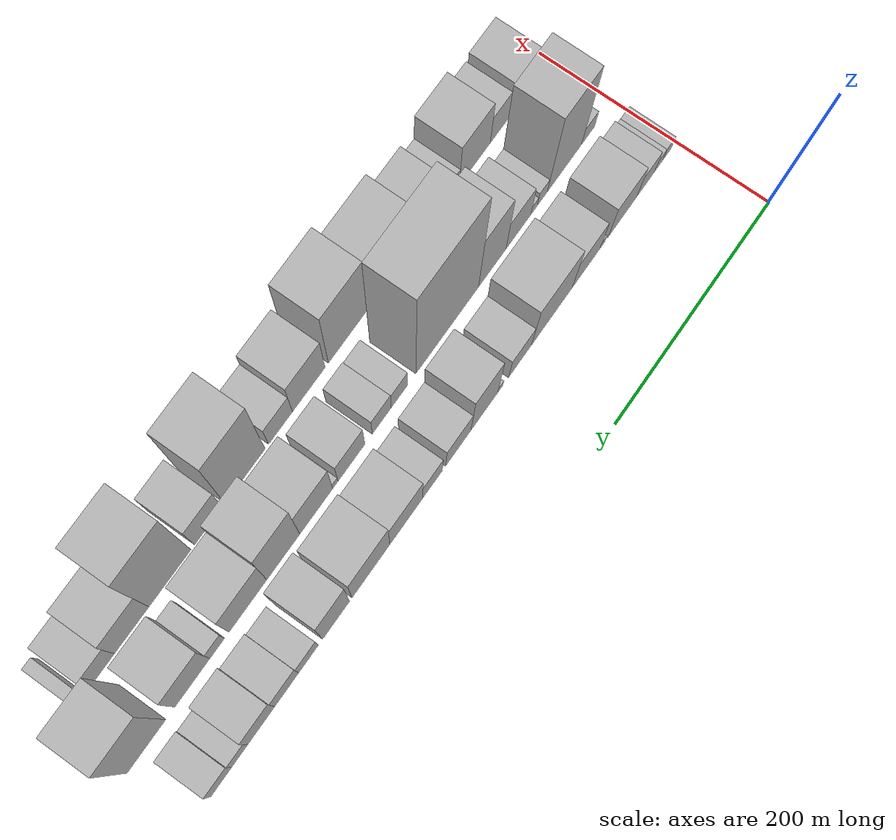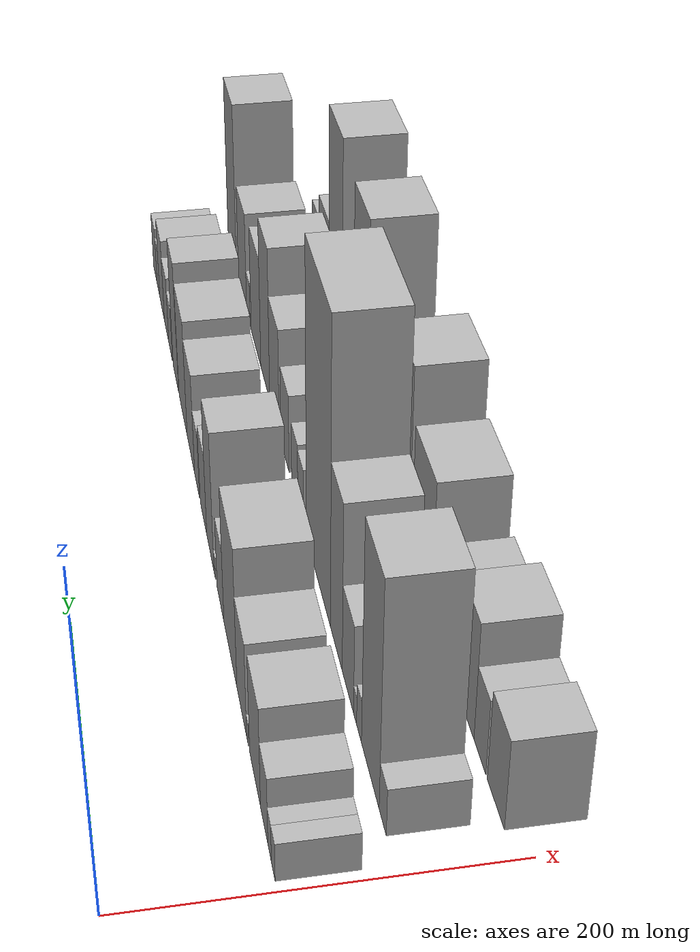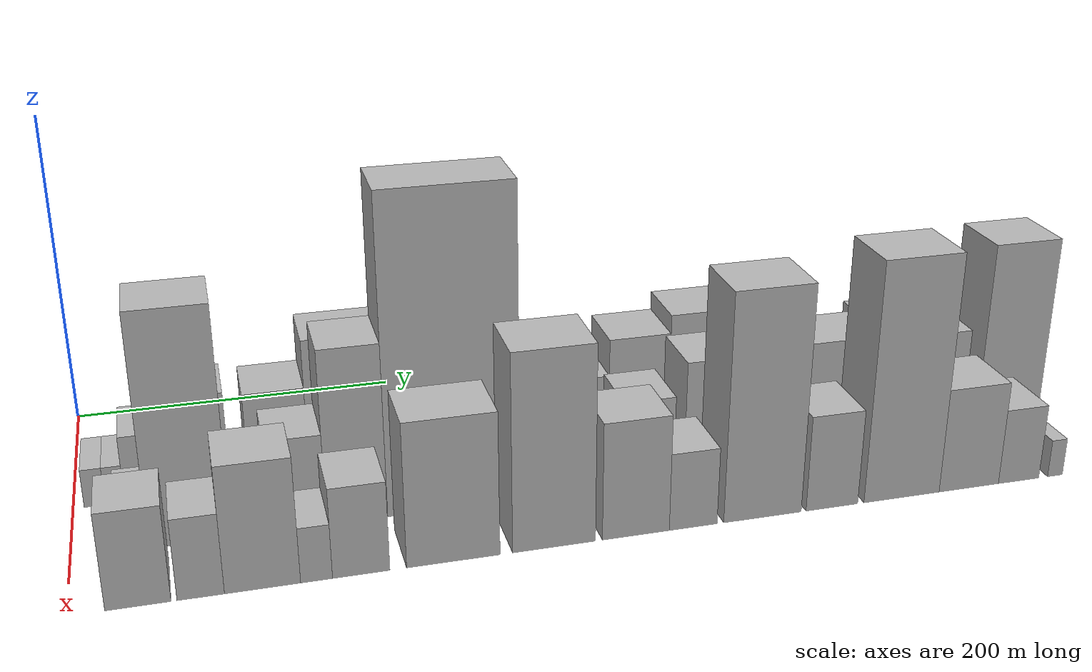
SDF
<sdf version="1.6">
 <world name="default">
  <model name="building_16">
   <static>1</static>
   <pose>100.0000 12.1694 0 0.000000 0.000000 0.000000</pose>
   <link name="link">
    <pose>0 0 12.00 0 0 0</pose>
    <collision name="collision"><geometry><box><size>40.0000 11.6483 24.0000</size></box></geometry></collision>
    <visual name="visual">
     <cast_shadows>0</cast_shadows>
     <geometry><box><size>40.0000 11.6483 24.0000</size></box></geometry>
     <material>
      <script>
       <uri>model://HANNAS_wall/materials/scripts</uri>
       <uri>model://HANNAS_wall/materials/textures</uri>
       <name>vrc/HANNAS_wall</name>
      </script>
     </material>
    </visual>
   </link>
  </model>
  <model name="building_17">
   <static>1</static>
   <pose>100.0000 23.4495 0 0.000000 0.000000 0.000000</pose>
   <link name="link">
    <pose>0 0 12.00 0 0 0</pose>
    <collision name="collision"><geometry><box><size>40.0000 10.9120 24.0000</size></box></geometry></collision>
    <visual name="visual">
     <cast_shadows>0</cast_shadows>
     <geometry><box><size>40.0000 10.9120 24.0000</size></box></geometry>
     <material>
      <script>
       <uri>model://HANNAS_wall/materials/scripts</uri>
       <uri>model://HANNAS_wall/materials/textures</uri>
       <name>vrc/HANNAS_wall</name>
      </script>
     </material>
    </visual>
   </link>
  </model>
  <model name="building_18">
   <static>1</static>
   <pose>100.0000 40.6644 0 0.000000 0.000000 0.000000</pose>
   <link name="link">
    <pose>0 0 21.00 0 0 0</pose>
    <collision name="collision"><geometry><box><size>40.0000 23.5177 42.0000</size></box></geometry></collision>
    <visual name="visual">
     <cast_shadows>0</cast_shadows>
     <geometry><box><size>40.0000 23.5177 42.0000</size></box></geometry>
     <material>
      <script>
       <uri>model://HANNAS_wall/materials/scripts</uri>
       <uri>model://HANNAS_wall/materials/textures</uri>
       <name>vrc/HANNAS_wall</name>
      </script>
     </material>
    </visual>
   </link>
  </model>
  <model name="building_19">
   <static>1</static>
   <pose>100.0000 70.8931 0 0.000000 0.000000 0.000000</pose>
   <link name="link">
    <pose>0 0 31.50 0 0 0</pose>
    <collision name="collision"><geometry><box><size>40.0000 36.9398 63.0000</size></box></geometry></collision>
    <visual name="visual">
     <cast_shadows>0</cast_shadows>
     <geometry><box><size>40.0000 36.9398 63.0000</size></box></geometry>
     <material>
      <script>
       <uri>model://HANNAS_wall/materials/scripts</uri>
       <uri>model://HANNAS_wall/materials/textures</uri>
       <name>vrc/HANNAS_wall</name>
      </script>
     </material>
    </visual>
   </link>
  </model>
  <model name="building_20">
   <static>1</static>
   <pose>100.0000 96.7150 0 0.000000 0.000000 0.000000</pose>
   <link name="link">
    <pose>0 0 7.50 0 0 0</pose>
    <collision name="collision"><geometry><box><size>40.0000 6.7040 15.0000</size></box></geometry></collision>
    <visual name="visual">
     <cast_shadows>0</cast_shadows>
     <geometry><box><size>40.0000 6.7040 15.0000</size></box></geometry>
     <material>
      <script>
       <uri>model://HANNAS_wall/materials/scripts</uri>
       <uri>model://HANNAS_wall/materials/textures</uri>
       <name>vrc/HANNAS_wall</name>
      </script>
     </material>
    </visual>
   </link>
  </model>
  <model name="building_21">
   <static>1</static>
   <pose>100.0000 117.7842 0 0.000000 0.000000 0.000000</pose>
   <link name="link">
    <pose>0 0 30.00 0 0 0</pose>
    <collision name="collision"><geometry><box><size>40.0000 35.4345 60.0000</size></box></geometry></collision>
    <visual name="visual">
     <cast_shadows>0</cast_shadows>
     <geometry><box><size>40.0000 35.4345 60.0000</size></box></geometry>
     <material>
      <script>
       <uri>model://HANNAS_wall/materials/scripts</uri>
       <uri>model://HANNAS_wall/materials/textures</uri>
       <name>vrc/HANNAS_wall</name>
      </script>
     </material>
    </visual>
   </link>
  </model>
  <model name="building_22">
   <static>1</static>
   <pose>100.0000 161.2391 0 0.000000 0.000000 0.000000</pose>
   <link name="link">
    <pose>0 0 45.00 0 0 0</pose>
    <collision name="collision"><geometry><box><size>40.0000 51.4753 90.0000</size></box></geometry></collision>
    <visual name="visual">
     <cast_shadows>0</cast_shadows>
     <geometry><box><size>40.0000 51.4753 90.0000</size></box></geometry>
     <material>
      <script>
       <uri>model://HANNAS_wall/materials/scripts</uri>
       <uri>model://HANNAS_wall/materials/textures</uri>
       <name>vrc/HANNAS_wall</name>
      </script>
     </material>
    </visual>
   </link>
  </model>
  <model name="building_23">
   <static>1</static>
   <pose>100.0000 201.2230 0 0.000000 0.000000 0.000000</pose>
   <link name="link">
    <pose>0 0 24.00 0 0 0</pose>
    <collision name="collision"><geometry><box><size>40.0000 28.4923 48.0000</size></box></geometry></collision>
    <visual name="visual">
     <cast_shadows>0</cast_shadows>
     <geometry><box><size>40.0000 28.4923 48.0000</size></box></geometry>
     <material>
      <script>
       <uri>model://HANNAS_wall/materials/scripts</uri>
       <uri>model://HANNAS_wall/materials/textures</uri>
       <name>vrc/HANNAS_wall</name>
      </script>
     </material>
    </visual>
   </link>
  </model>
  <model name="building_24">
   <static>1</static>
   <pose>100.0000 225.8914 0 0.000000 0.000000 0.000000</pose>
   <link name="link">
    <pose>0 0 7.50 0 0 0</pose>
    <collision name="collision"><geometry><box><size>40.0000 6.8446 15.0000</size></box></geometry></collision>
    <visual name="visual">
     <cast_shadows>0</cast_shadows>
     <geometry><box><size>40.0000 6.8446 15.0000</size></box></geometry>
     <material>
      <script>
       <uri>model://HANNAS_wall/materials/scripts</uri>
       <uri>model://HANNAS_wall/materials/textures</uri>
       <name>vrc/HANNAS_wall</name>
      </script>
     </material>
    </visual>
   </link>
  </model>
  <model name="building_25">
   <static>1</static>
   <pose>100.0000 245.7878 0 0.000000 0.000000 0.000000</pose>
   <link name="link">
    <pose>0 0 46.50 0 0 0</pose>
    <collision name="collision"><geometry><box><size>40.0000 32.9482 93.0000</size></box></geometry></collision>
    <visual name="visual">
     <cast_shadows>0</cast_shadows>
     <geometry><box><size>40.0000 32.9482 93.0000</size></box></geometry>
     <material>
      <script>
       <uri>model://HANNAS_wall/materials/scripts</uri>
       <uri>model://HANNAS_wall/materials/textures</uri>
       <name>vrc/HANNAS_wall</name>
      </script>
     </material>
    </visual>
   </link>
  </model>
  <model name="building_26">
   <static>1</static>
   <pose>100.0000 277.6288 0 0.000000 0.000000 0.000000</pose>
   <link name="link">
    <pose>0 0 27.00 0 0 0</pose>
    <collision name="collision"><geometry><box><size>40.0000 30.7338 54.0000</size></box></geometry></collision>
    <visual name="visual">
     <cast_shadows>0</cast_shadows>
     <geometry><box><size>40.0000 30.7338 54.0000</size></box></geometry>
     <material>
      <script>
       <uri>model://HANNAS_wall/materials/scripts</uri>
       <uri>model://HANNAS_wall/materials/textures</uri>
       <name>vrc/HANNAS_wall</name>
      </script>
     </material>
    </visual>
   </link>
  </model>
  <model name="building_27">
   <static>1</static>
   <pose>100.0000 308.9507 0 0.000000 0.000000 0.000000</pose>
   <link name="link">
    <pose>0 0 22.50 0 0 0</pose>
    <collision name="collision"><geometry><box><size>40.0000 23.9101 45.0000</size></box></geometry></collision>
    <visual name="visual">
     <cast_shadows>0</cast_shadows>
     <geometry><box><size>40.0000 23.9101 45.0000</size></box></geometry>
     <material>
      <script>
       <uri>model://HANNAS_wall/materials/scripts</uri>
       <uri>model://HANNAS_wall/materials/textures</uri>
       <name>vrc/HANNAS_wall</name>
      </script>
     </material>
    </visual>
   </link>
  </model>
  <model name="building_28">
   <static>1</static>
   <pose>100.0000 340.4748 0 0.000000 0.000000 0.000000</pose>
   <link name="link">
    <pose>0 0 34.50 0 0 0</pose>
    <collision name="collision"><geometry><box><size>40.0000 39.1380 69.0000</size></box></geometry></collision>
    <visual name="visual">
     <cast_shadows>0</cast_shadows>
     <geometry><box><size>40.0000 39.1380 69.0000</size></box></geometry>
     <material>
      <script>
       <uri>model://HANNAS_wall/materials/scripts</uri>
       <uri>model://HANNAS_wall/materials/textures</uri>
       <name>vrc/HANNAS_wall</name>
      </script>
     </material>
    </visual>
   </link>
  </model>
  <model name="building_29">
   <static>1</static>
   <pose>100.0000 382.3698 0 0.000000 0.000000 0.000000</pose>
   <link name="link">
    <pose>0 0 40.50 0 0 0</pose>
    <collision name="collision"><geometry><box><size>40.0000 44.6520 81.0000</size></box></geometry></collision>
    <visual name="visual">
     <cast_shadows>0</cast_shadows>
     <geometry><box><size>40.0000 44.6520 81.0000</size></box></geometry>
     <material>
      <script>
       <uri>model://HANNAS_wall/materials/scripts</uri>
       <uri>model://HANNAS_wall/materials/textures</uri>
       <name>vrc/HANNAS_wall</name>
      </script>
     </material>
    </visual>
   </link>
  </model>
  <model name="building_30">
   <static>1</static>
   <pose>100.0000 423.3822 0 0.000000 0.000000 0.000000</pose>
   <link name="link">
    <pose>0 0 46.50 0 0 0</pose>
    <collision name="collision"><geometry><box><size>40.0000 31.3728 93.0000</size></box></geometry></collision>
    <visual name="visual">
     <cast_shadows>0</cast_shadows>
     <geometry><box><size>40.0000 31.3728 93.0000</size></box></geometry>
     <material>
      <script>
       <uri>model://HANNAS_wall/materials/scripts</uri>
       <uri>model://HANNAS_wall/materials/textures</uri>
       <name>vrc/HANNAS_wall</name>
      </script>
     </material>
    </visual>
   </link>
  </model>
  <model name="building_31">
   <static>1</static>
   <pose>100.0000 455.3602 0 0.000000 0.000000 0.000000</pose>
   <link name="link">
    <pose>0 0 19.50 0 0 0</pose>
    <collision name="collision"><geometry><box><size>40.0000 22.5831 39.0000</size></box></geometry></collision>
    <visual name="visual">
     <cast_shadows>0</cast_shadows>
     <geometry><box><size>40.0000 22.5831 39.0000</size></box></geometry>
     <material>
      <script>
       <uri>model://HANNAS_wall/materials/scripts</uri>
       <uri>model://HANNAS_wall/materials/textures</uri>
       <name>vrc/HANNAS_wall</name>
      </script>
     </material>
    </visual>
   </link>
  </model>
  <model name="building_32">
   <static>1</static>
   <pose>100.0000 480.3350 0 0.000000 0.000000 0.000000</pose>
   <link name="link">
    <pose>0 0 24.00 0 0 0</pose>
    <collision name="collision"><geometry><box><size>40.0000 27.3665 48.0000</size></box></geometry></collision>
    <visual name="visual">
     <cast_shadows>0</cast_shadows>
     <geometry><box><size>40.0000 27.3665 48.0000</size></box></geometry>
     <material>
      <script>
       <uri>model://HANNAS_wall/materials/scripts</uri>
       <uri>model://HANNAS_wall/materials/textures</uri>
       <name>vrc/HANNAS_wall</name>
      </script>
     </material>
    </visual>
   </link>
  </model>
  <model name="building_33">
   <static>1</static>
   <pose>100.0000 509.3112 0 0.000000 0.000000 0.000000</pose>
   <link name="link">
    <pose>0 0 30.00 0 0 0</pose>
    <collision name="collision"><geometry><box><size>40.0000 30.5859 60.0000</size></box></geometry></collision>
    <visual name="visual">
     <cast_shadows>0</cast_shadows>
     <geometry><box><size>40.0000 30.5859 60.0000</size></box></geometry>
     <material>
      <script>
       <uri>model://HANNAS_wall/materials/scripts</uri>
       <uri>model://HANNAS_wall/materials/textures</uri>
       <name>vrc/HANNAS_wall</name>
      </script>
     </material>
    </visual>
   </link>
  </model>
  <model name="building_34">
   <static>1</static>
   <pose>100.0000 533.6511 0 0.000000 0.000000 0.000000</pose>
   <link name="link">
    <pose>0 0 18.00 0 0 0</pose>
    <collision name="collision"><geometry><box><size>40.0000 18.0937 36.0000</size></box></geometry></collision>
    <visual name="visual">
     <cast_shadows>0</cast_shadows>
     <geometry><box><size>40.0000 18.0937 36.0000</size></box></geometry>
     <material>
      <script>
       <uri>model://HANNAS_wall/materials/scripts</uri>
       <uri>model://HANNAS_wall/materials/textures</uri>
       <name>vrc/HANNAS_wall</name>
      </script>
     </material>
    </visual>
   </link>
  </model>
  <model name="building_35">
   <static>1</static>
   <pose>100.0000 554.5918 0 0.000000 0.000000 0.000000</pose>
   <link name="link">
    <pose>0 0 21.00 0 0 0</pose>
    <collision name="collision"><geometry><box><size>40.0000 23.7879 42.0000</size></box></geometry></collision>
    <visual name="visual">
     <cast_shadows>0</cast_shadows>
     <geometry><box><size>40.0000 23.7879 42.0000</size></box></geometry>
     <material>
      <script>
       <uri>model://HANNAS_wall/materials/scripts</uri>
       <uri>model://HANNAS_wall/materials/textures</uri>
       <name>vrc/HANNAS_wall</name>
      </script>
     </material>
    </visual>
   </link>
  </model>
  <model name="building_55">
   <static>1</static>
   <pose>155.0000 33.0657 0 0.000000 0.000000 0.000000</pose>
   <link name="link">
    <pose>0 0 15.00 0 0 0</pose>
    <collision name="collision"><geometry><box><size>40.0000 17.0834 30.0000</size></box></geometry></collision>
    <visual name="visual">
     <cast_shadows>0</cast_shadows>
     <geometry><box><size>40.0000 17.0834 30.0000</size></box></geometry>
     <material>
      <script>
       <uri>model://HANNAS_wall/materials/scripts</uri>
       <uri>model://HANNAS_wall/materials/textures</uri>
       <name>vrc/HANNAS_wall</name>
      </script>
     </material>
    </visual>
   </link>
  </model>
  <model name="building_56">
   <static>1</static>
   <pose>155.0000 63.8324 0 0.000000 0.000000 0.000000</pose>
   <link name="link">
    <pose>0 0 70.50 0 0 0</pose>
    <collision name="collision"><geometry><box><size>40.0000 44.4502 141.0000</size></box></geometry></collision>
    <visual name="visual">
     <cast_shadows>0</cast_shadows>
     <geometry><box><size>40.0000 44.4502 141.0000</size></box></geometry>
     <material>
      <script>
       <uri>model://HANNAS_wall/materials/scripts</uri>
       <uri>model://HANNAS_wall/materials/textures</uri>
       <name>vrc/HANNAS_wall</name>
      </script>
     </material>
    </visual>
   </link>
  </model>
  <model name="building_57">
   <static>1</static>
   <pose>155.0000 92.4736 0 0.000000 0.000000 0.000000</pose>
   <link name="link">
    <pose>0 0 13.50 0 0 0</pose>
    <collision name="collision"><geometry><box><size>40.0000 12.8322 27.0000</size></box></geometry></collision>
    <visual name="visual">
     <cast_shadows>0</cast_shadows>
     <geometry><box><size>40.0000 12.8322 27.0000</size></box></geometry>
     <material>
      <script>
       <uri>model://HANNAS_wall/materials/scripts</uri>
       <uri>model://HANNAS_wall/materials/textures</uri>
       <name>vrc/HANNAS_wall</name>
      </script>
     </material>
    </visual>
   </link>
  </model>
  <model name="building_58">
   <static>1</static>
   <pose>155.0000 103.0673 0 0.000000 0.000000 0.000000</pose>
   <link name="link">
    <pose>0 0 9.00 0 0 0</pose>
    <collision name="collision"><geometry><box><size>40.0000 8.3551 18.0000</size></box></geometry></collision>
    <visual name="visual">
     <cast_shadows>0</cast_shadows>
     <geometry><box><size>40.0000 8.3551 18.0000</size></box></geometry>
     <material>
      <script>
       <uri>model://HANNAS_wall/materials/scripts</uri>
       <uri>model://HANNAS_wall/materials/textures</uri>
       <name>vrc/HANNAS_wall</name>
      </script>
     </material>
    </visual>
   </link>
  </model>
  <model name="building_59">
   <static>1</static>
   <pose>155.0000 122.9987 0 0.000000 0.000000 0.000000</pose>
   <link name="link">
    <pose>0 0 28.50 0 0 0</pose>
    <collision name="collision"><geometry><box><size>40.0000 31.5078 57.0000</size></box></geometry></collision>
    <visual name="visual">
     <cast_shadows>0</cast_shadows>
     <geometry><box><size>40.0000 31.5078 57.0000</size></box></geometry>
     <material>
      <script>
       <uri>model://HANNAS_wall/materials/scripts</uri>
       <uri>model://HANNAS_wall/materials/textures</uri>
       <name>vrc/HANNAS_wall</name>
      </script>
     </material>
    </visual>
   </link>
  </model>
  <model name="building_60">
   <static>1</static>
   <pose>155.0000 156.0579 0 0.000000 0.000000 0.000000</pose>
   <link name="link">
    <pose>0 0 54.00 0 0 0</pose>
    <collision name="collision"><geometry><box><size>40.0000 34.6107 108.0000</size></box></geometry></collision>
    <visual name="visual">
     <cast_shadows>0</cast_shadows>
     <geometry><box><size>40.0000 34.6107 108.0000</size></box></geometry>
     <material>
      <script>
       <uri>model://HANNAS_wall/materials/scripts</uri>
       <uri>model://HANNAS_wall/materials/textures</uri>
       <name>vrc/HANNAS_wall</name>
      </script>
     </material>
    </visual>
   </link>
  </model>
  <model name="building_61">
   <static>1</static>
   <pose>155.0000 212.0960 0 0.000000 0.000000 0.000000</pose>
   <link name="link">
    <pose>0 0 97.50 0 0 0</pose>
    <collision name="collision"><geometry><box><size>40.0000 77.4655 195.0000</size></box></geometry></collision>
    <visual name="visual">
     <cast_shadows>0</cast_shadows>
     <geometry><box><size>40.0000 77.4655 195.0000</size></box></geometry>
     <material>
      <script>
       <uri>model://HANNAS_wall/materials/scripts</uri>
       <uri>model://HANNAS_wall/materials/textures</uri>
       <name>vrc/HANNAS_wall</name>
      </script>
     </material>
    </visual>
   </link>
  </model>
  <model name="building_62">
   <static>1</static>
   <pose>155.0000 270.9017 0 0.000000 0.000000 0.000000</pose>
   <link name="link">
    <pose>0 0 19.50 0 0 0</pose>
    <collision name="collision"><geometry><box><size>40.0000 20.1458 39.0000</size></box></geometry></collision>
    <visual name="visual">
     <cast_shadows>0</cast_shadows>
     <geometry><box><size>40.0000 20.1458 39.0000</size></box></geometry>
     <material>
      <script>
       <uri>model://HANNAS_wall/materials/scripts</uri>
       <uri>model://HANNAS_wall/materials/textures</uri>
       <name>vrc/HANNAS_wall</name>
      </script>
     </material>
    </visual>
   </link>
  </model>
  <model name="building_63">
   <static>1</static>
   <pose>155.0000 292.4099 0 0.000000 0.000000 0.000000</pose>
   <link name="link">
    <pose>0 0 21.00 0 0 0</pose>
    <collision name="collision"><geometry><box><size>40.0000 22.8704 42.0000</size></box></geometry></collision>
    <visual name="visual">
     <cast_shadows>0</cast_shadows>
     <geometry><box><size>40.0000 22.8704 42.0000</size></box></geometry>
     <material>
      <script>
       <uri>model://HANNAS_wall/materials/scripts</uri>
       <uri>model://HANNAS_wall/materials/textures</uri>
       <name>vrc/HANNAS_wall</name>
      </script>
     </material>
    </visual>
   </link>
  </model>
  <model name="building_64">
   <static>1</static>
   <pose>155.0000 328.8127 0 0.000000 0.000000 0.000000</pose>
   <link name="link">
    <pose>0 0 27.00 0 0 0</pose>
    <collision name="collision"><geometry><box><size>40.0000 31.9351 54.0000</size></box></geometry></collision>
    <visual name="visual">
     <cast_shadows>0</cast_shadows>
     <geometry><box><size>40.0000 31.9351 54.0000</size></box></geometry>
     <material>
      <script>
       <uri>model://HANNAS_wall/materials/scripts</uri>
       <uri>model://HANNAS_wall/materials/textures</uri>
       <name>vrc/HANNAS_wall</name>
      </script>
     </material>
    </visual>
   </link>
  </model>
  <model name="building_65">
   <static>1</static>
   <pose>155.0000 347.9724 0 0.000000 0.000000 0.000000</pose>
   <link name="link">
    <pose>0 0 7.50 0 0 0</pose>
    <collision name="collision"><geometry><box><size>40.0000 6.3843 15.0000</size></box></geometry></collision>
    <visual name="visual">
     <cast_shadows>0</cast_shadows>
     <geometry><box><size>40.0000 6.3843 15.0000</size></box></geometry>
     <material>
      <script>
       <uri>model://HANNAS_wall/materials/scripts</uri>
       <uri>model://HANNAS_wall/materials/textures</uri>
       <name>vrc/HANNAS_wall</name>
      </script>
     </material>
    </visual>
   </link>
  </model>
  <model name="building_66">
   <static>1</static>
   <pose>155.0000 370.5559 0 0.000000 0.000000 0.000000</pose>
   <link name="link">
    <pose>0 0 37.50 0 0 0</pose>
    <collision name="collision"><geometry><box><size>40.0000 38.7827 75.0000</size></box></geometry></collision>
    <visual name="visual">
     <cast_shadows>0</cast_shadows>
     <geometry><box><size>40.0000 38.7827 75.0000</size></box></geometry>
     <material>
      <script>
       <uri>model://HANNAS_wall/materials/scripts</uri>
       <uri>model://HANNAS_wall/materials/textures</uri>
       <name>vrc/HANNAS_wall</name>
      </script>
     </material>
    </visual>
   </link>
  </model>
  <model name="building_67">
   <static>1</static>
   <pose>155.0000 409.1910 0 0.000000 0.000000 0.000000</pose>
   <link name="link">
    <pose>0 0 54.00 0 0 0</pose>
    <collision name="collision"><geometry><box><size>40.0000 38.4876 108.0000</size></box></geometry></collision>
    <visual name="visual">
     <cast_shadows>0</cast_shadows>
     <geometry><box><size>40.0000 38.4876 108.0000</size></box></geometry>
     <material>
      <script>
       <uri>model://HANNAS_wall/materials/scripts</uri>
       <uri>model://HANNAS_wall/materials/textures</uri>
       <name>vrc/HANNAS_wall</name>
      </script>
     </material>
    </visual>
   </link>
  </model>
  <model name="building_68">
   <static>1</static>
   <pose>155.0000 450.2073 0 0.000000 0.000000 0.000000</pose>
   <link name="link">
    <pose>0 0 39.00 0 0 0</pose>
    <collision name="collision"><geometry><box><size>40.0000 43.5450 78.0000</size></box></geometry></collision>
    <visual name="visual">
     <cast_shadows>0</cast_shadows>
     <geometry><box><size>40.0000 43.5450 78.0000</size></box></geometry>
     <material>
      <script>
       <uri>model://HANNAS_wall/materials/scripts</uri>
       <uri>model://HANNAS_wall/materials/textures</uri>
       <name>vrc/HANNAS_wall</name>
      </script>
     </material>
    </visual>
   </link>
  </model>
  <model name="building_69">
   <static>1</static>
   <pose>155.0000 485.3135 0 0.000000 0.000000 0.000000</pose>
   <link name="link">
    <pose>0 0 16.50 0 0 0</pose>
    <collision name="collision"><geometry><box><size>40.0000 16.6675 33.0000</size></box></geometry></collision>
    <visual name="visual">
     <cast_shadows>0</cast_shadows>
     <geometry><box><size>40.0000 16.6675 33.0000</size></box></geometry>
     <material>
      <script>
       <uri>model://HANNAS_wall/materials/scripts</uri>
       <uri>model://HANNAS_wall/materials/textures</uri>
       <name>vrc/HANNAS_wall</name>
      </script>
     </material>
    </visual>
   </link>
  </model>
  <model name="building_70">
   <static>1</static>
   <pose>155.0000 513.5282 0 0.000000 0.000000 0.000000</pose>
   <link name="link">
    <pose>0 0 37.50 0 0 0</pose>
    <collision name="collision"><geometry><box><size>40.0000 39.7619 75.0000</size></box></geometry></collision>
    <visual name="visual">
     <cast_shadows>0</cast_shadows>
     <geometry><box><size>40.0000 39.7619 75.0000</size></box></geometry>
     <material>
      <script>
       <uri>model://HANNAS_wall/materials/scripts</uri>
       <uri>model://HANNAS_wall/materials/textures</uri>
       <name>vrc/HANNAS_wall</name>
      </script>
     </material>
    </visual>
   </link>
  </model>
  <model name="building_71">
   <static>1</static>
   <pose>155.0000 565.0204 0 0.000000 0.000000 0.000000</pose>
   <link name="link">
    <pose>0 0 64.50 0 0 0</pose>
    <collision name="collision"><geometry><box><size>40.0000 43.2225 129.0000</size></box></geometry></collision>
    <visual name="visual">
     <cast_shadows>0</cast_shadows>
     <geometry><box><size>40.0000 43.2225 129.0000</size></box></geometry>
     <material>
      <script>
       <uri>model://HANNAS_wall/materials/scripts</uri>
       <uri>model://HANNAS_wall/materials/textures</uri>
       <name>vrc/HANNAS_wall</name>
      </script>
     </material>
    </visual>
   </link>
  </model>
  <model name="building_90">
   <static>1</static>
   <pose>210.0000 35.2765 0 0.000000 0.000000 0.000000</pose>
   <link name="link">
    <pose>0 0 28.50 0 0 0</pose>
    <collision name="collision"><geometry><box><size>40.0000 33.0391 57.0000</size></box></geometry></collision>
    <visual name="visual">
     <cast_shadows>0</cast_shadows>
     <geometry><box><size>40.0000 33.0391 57.0000</size></box></geometry>
     <material>
      <script>
       <uri>model://HANNAS_wall/materials/scripts</uri>
       <uri>model://HANNAS_wall/materials/textures</uri>
       <name>vrc/HANNAS_wall</name>
      </script>
     </material>
    </visual>
   </link>
  </model>
  <model name="building_91">
   <static>1</static>
   <pose>210.0000 66.8553 0 0.000000 0.000000 0.000000</pose>
   <link name="link">
    <pose>0 0 24.00 0 0 0</pose>
    <collision name="collision"><geometry><box><size>40.0000 24.1184 48.0000</size></box></geometry></collision>
    <visual name="visual">
     <cast_shadows>0</cast_shadows>
     <geometry><box><size>40.0000 24.1184 48.0000</size></box></geometry>
     <material>
      <script>
       <uri>model://HANNAS_wall/materials/scripts</uri>
       <uri>model://HANNAS_wall/materials/textures</uri>
       <name>vrc/HANNAS_wall</name>
      </script>
     </material>
    </visual>
   </link>
  </model>
  <model name="building_92">
   <static>1</static>
   <pose>210.0000 98.6231 0 0.000000 0.000000 0.000000</pose>
   <link name="link">
    <pose>0 0 37.50 0 0 0</pose>
    <collision name="collision"><geometry><box><size>40.0000 39.4172 75.0000</size></box></geometry></collision>
    <visual name="visual">
     <cast_shadows>0</cast_shadows>
     <geometry><box><size>40.0000 39.4172 75.0000</size></box></geometry>
     <material>
      <script>
       <uri>model://HANNAS_wall/materials/scripts</uri>
       <uri>model://HANNAS_wall/materials/textures</uri>
       <name>vrc/HANNAS_wall</name>
      </script>
     </material>
    </visual>
   </link>
  </model>
  <model name="building_93">
   <static>1</static>
   <pose>210.0000 126.7239 0 0.000000 0.000000 0.000000</pose>
   <link name="link">
    <pose>0 0 16.50 0 0 0</pose>
    <collision name="collision"><geometry><box><size>40.0000 16.7845 33.0000</size></box></geometry></collision>
    <visual name="visual">
     <cast_shadows>0</cast_shadows>
     <geometry><box><size>40.0000 16.7845 33.0000</size></box></geometry>
     <material>
      <script>
       <uri>model://HANNAS_wall/materials/scripts</uri>
       <uri>model://HANNAS_wall/materials/textures</uri>
       <name>vrc/HANNAS_wall</name>
      </script>
     </material>
    </visual>
   </link>
  </model>
  <model name="building_94">
   <static>1</static>
   <pose>210.0000 150.4212 0 0.000000 0.000000 0.000000</pose>
   <link name="link">
    <pose>0 0 27.00 0 0 0</pose>
    <collision name="collision"><geometry><box><size>40.0000 30.6100 54.0000</size></box></geometry></collision>
    <visual name="visual">
     <cast_shadows>0</cast_shadows>
     <geometry><box><size>40.0000 30.6100 54.0000</size></box></geometry>
     <material>
      <script>
       <uri>model://HANNAS_wall/materials/scripts</uri>
       <uri>model://HANNAS_wall/materials/textures</uri>
       <name>vrc/HANNAS_wall</name>
      </script>
     </material>
    </visual>
   </link>
  </model>
  <model name="building_95">
   <static>1</static>
   <pose>210.0000 200.4283 0 0.000000 0.000000 0.000000</pose>
   <link name="link">
    <pose>0 0 43.50 0 0 0</pose>
    <collision name="collision"><geometry><box><size>40.0000 51.4043 87.0000</size></box></geometry></collision>
    <visual name="visual">
     <cast_shadows>0</cast_shadows>
     <geometry><box><size>40.0000 51.4043 87.0000</size></box></geometry>
     <material>
      <script>
       <uri>model://HANNAS_wall/materials/scripts</uri>
       <uri>model://HANNAS_wall/materials/textures</uri>
       <name>vrc/HANNAS_wall</name>
      </script>
     </material>
    </visual>
   </link>
  </model>
  <model name="building_96">
   <static>1</static>
   <pose>210.0000 256.6577 0 0.000000 0.000000 0.000000</pose>
   <link name="link">
    <pose>0 0 60.00 0 0 0</pose>
    <collision name="collision"><geometry><box><size>40.0000 47.0546 120.0000</size></box></geometry></collision>
    <visual name="visual">
     <cast_shadows>0</cast_shadows>
     <geometry><box><size>40.0000 47.0546 120.0000</size></box></geometry>
     <material>
      <script>
       <uri>model://HANNAS_wall/materials/scripts</uri>
       <uri>model://HANNAS_wall/materials/textures</uri>
       <name>vrc/HANNAS_wall</name>
      </script>
     </material>
    </visual>
   </link>
  </model>
  <model name="building_97">
   <static>1</static>
   <pose>210.0000 303.6957 0 0.000000 0.000000 0.000000</pose>
   <link name="link">
    <pose>0 0 36.00 0 0 0</pose>
    <collision name="collision"><geometry><box><size>40.0000 39.0214 72.0000</size></box></geometry></collision>
    <visual name="visual">
     <cast_shadows>0</cast_shadows>
     <geometry><box><size>40.0000 39.0214 72.0000</size></box></geometry>
     <material>
      <script>
       <uri>model://HANNAS_wall/materials/scripts</uri>
       <uri>model://HANNAS_wall/materials/textures</uri>
       <name>vrc/HANNAS_wall</name>
      </script>
     </material>
    </visual>
   </link>
  </model>
  <model name="building_98">
   <static>1</static>
   <pose>210.0000 337.3963 0 0.000000 0.000000 0.000000</pose>
   <link name="link">
    <pose>0 0 24.00 0 0 0</pose>
    <collision name="collision"><geometry><box><size>40.0000 28.3797 48.0000</size></box></geometry></collision>
    <visual name="visual">
     <cast_shadows>0</cast_shadows>
     <geometry><box><size>40.0000 28.3797 48.0000</size></box></geometry>
     <material>
      <script>
       <uri>model://HANNAS_wall/materials/scripts</uri>
       <uri>model://HANNAS_wall/materials/textures</uri>
       <name>vrc/HANNAS_wall</name>
      </script>
     </material>
    </visual>
   </link>
  </model>
  <model name="building_99">
   <static>1</static>
   <pose>210.0000 379.1500 0 0.000000 0.000000 0.000000</pose>
   <link name="link">
    <pose>0 0 70.50 0 0 0</pose>
    <collision name="collision"><geometry><box><size>40.0000 47.1277 141.0000</size></box></geometry></collision>
    <visual name="visual">
     <cast_shadows>0</cast_shadows>
     <geometry><box><size>40.0000 47.1277 141.0000</size></box></geometry>
     <material>
      <script>
       <uri>model://HANNAS_wall/materials/scripts</uri>
       <uri>model://HANNAS_wall/materials/textures</uri>
       <name>vrc/HANNAS_wall</name>
      </script>
     </material>
    </visual>
   </link>
  </model>
  <model name="building_100">
   <static>1</static>
   <pose>210.0000 421.7896 0 0.000000 0.000000 0.000000</pose>
   <link name="link">
    <pose>0 0 30.00 0 0 0</pose>
    <collision name="collision"><geometry><box><size>40.0000 32.1515 60.0000</size></box></geometry></collision>
    <visual name="visual">
     <cast_shadows>0</cast_shadows>
     <geometry><box><size>40.0000 32.1515 60.0000</size></box></geometry>
     <material>
      <script>
       <uri>model://HANNAS_wall/materials/scripts</uri>
       <uri>model://HANNAS_wall/materials/textures</uri>
       <name>vrc/HANNAS_wall</name>
      </script>
     </material>
    </visual>
   </link>
  </model>
  <model name="building_101">
   <static>1</static>
   <pose>210.0000 465.8469 0 0.000000 0.000000 0.000000</pose>
   <link name="link">
    <pose>0 0 75.00 0 0 0</pose>
    <collision name="collision"><geometry><box><size>40.0000 47.9632 150.0000</size></box></geometry></collision>
    <visual name="visual">
     <cast_shadows>0</cast_shadows>
     <geometry><box><size>40.0000 47.9632 150.0000</size></box></geometry>
     <material>
      <script>
       <uri>model://HANNAS_wall/materials/scripts</uri>
       <uri>model://HANNAS_wall/materials/textures</uri>
       <name>vrc/HANNAS_wall</name>
      </script>
     </material>
    </visual>
   </link>
  </model>
  <model name="building_102">
   <static>1</static>
   <pose>210.0000 509.1974 0 0.000000 0.000000 0.000000</pose>
   <link name="link">
    <pose>0 0 33.00 0 0 0</pose>
    <collision name="collision"><geometry><box><size>40.0000 38.7379 66.0000</size></box></geometry></collision>
    <visual name="visual">
     <cast_shadows>0</cast_shadows>
     <geometry><box><size>40.0000 38.7379 66.0000</size></box></geometry>
     <material>
      <script>
       <uri>model://HANNAS_wall/materials/scripts</uri>
       <uri>model://HANNAS_wall/materials/textures</uri>
       <name>vrc/HANNAS_wall</name>
      </script>
     </material>
    </visual>
   </link>
  </model>
  <model name="building_103">
   <static>1</static>
   <pose>210.0000 541.9543 0 0.000000 0.000000 0.000000</pose>
   <link name="link">
    <pose>0 0 24.00 0 0 0</pose>
    <collision name="collision"><geometry><box><size>40.0000 26.7759 48.0000</size></box></geometry></collision>
    <visual name="visual">
     <cast_shadows>0</cast_shadows>
     <geometry><box><size>40.0000 26.7759 48.0000</size></box></geometry>
     <material>
      <script>
       <uri>model://HANNAS_wall/materials/scripts</uri>
       <uri>model://HANNAS_wall/materials/textures</uri>
       <name>vrc/HANNAS_wall</name>
      </script>
     </material>
    </visual>
   </link>
  </model>
  <model name="building_104">
   <static>1</static>
   <pose>210.0000 566.2757 0 0.000000 0.000000 0.000000</pose>
   <link name="link">
    <pose>0 0 12.00 0 0 0</pose>
    <collision name="collision"><geometry><box><size>40.0000 9.8668 24.0000</size></box></geometry></collision>
    <visual name="visual">
     <cast_shadows>0</cast_shadows>
     <geometry><box><size>40.0000 9.8668 24.0000</size></box></geometry>
     <material>
      <script>
       <uri>model://HANNAS_wall/materials/scripts</uri>
       <uri>model://HANNAS_wall/materials/textures</uri>
       <name>vrc/HANNAS_wall</name>
      </script>
     </material>
    </visual>
   </link>
  </model>
 </world>
</sdf>
